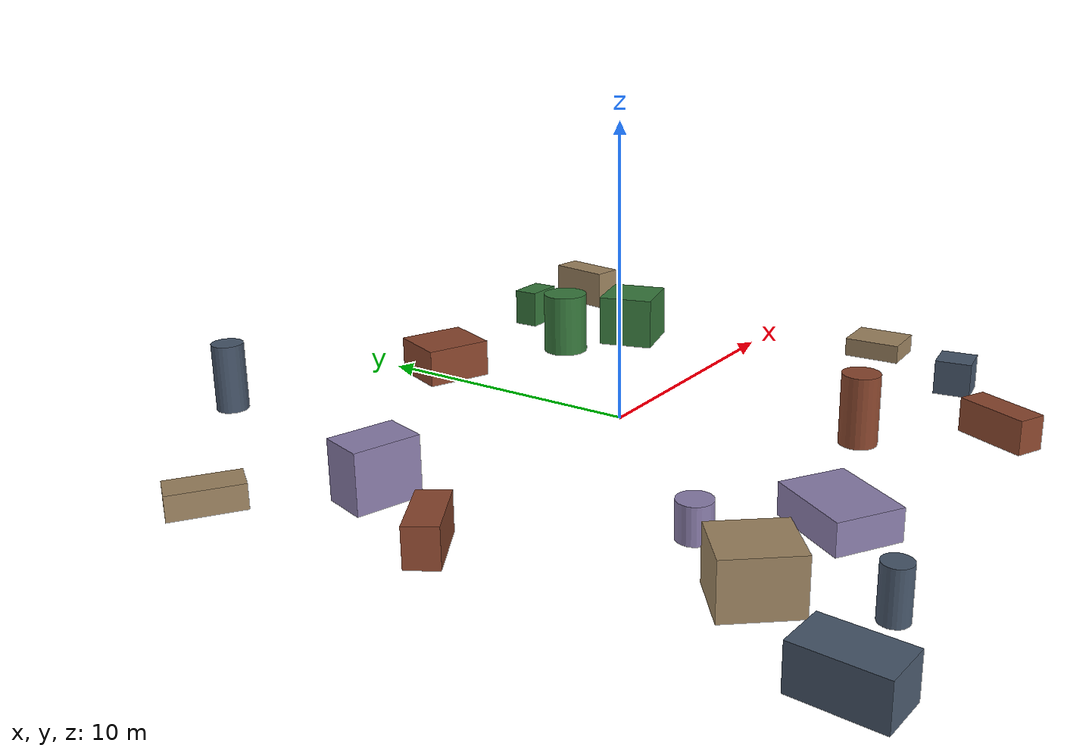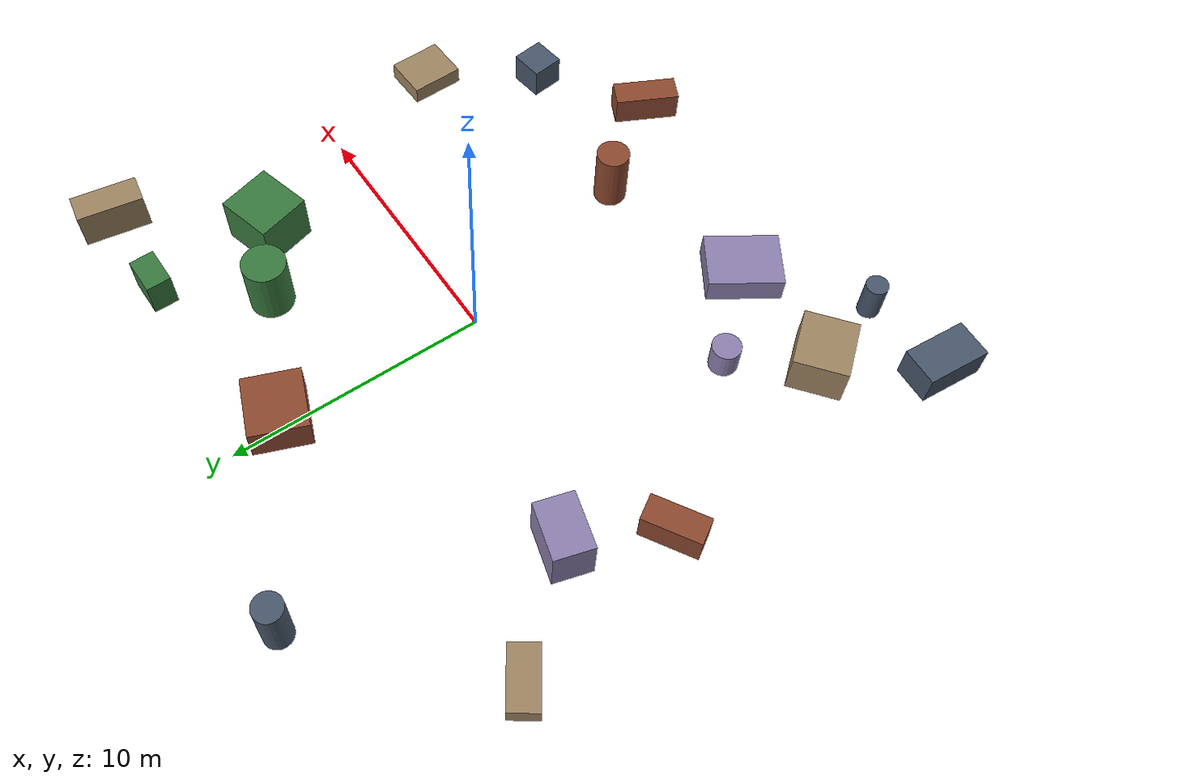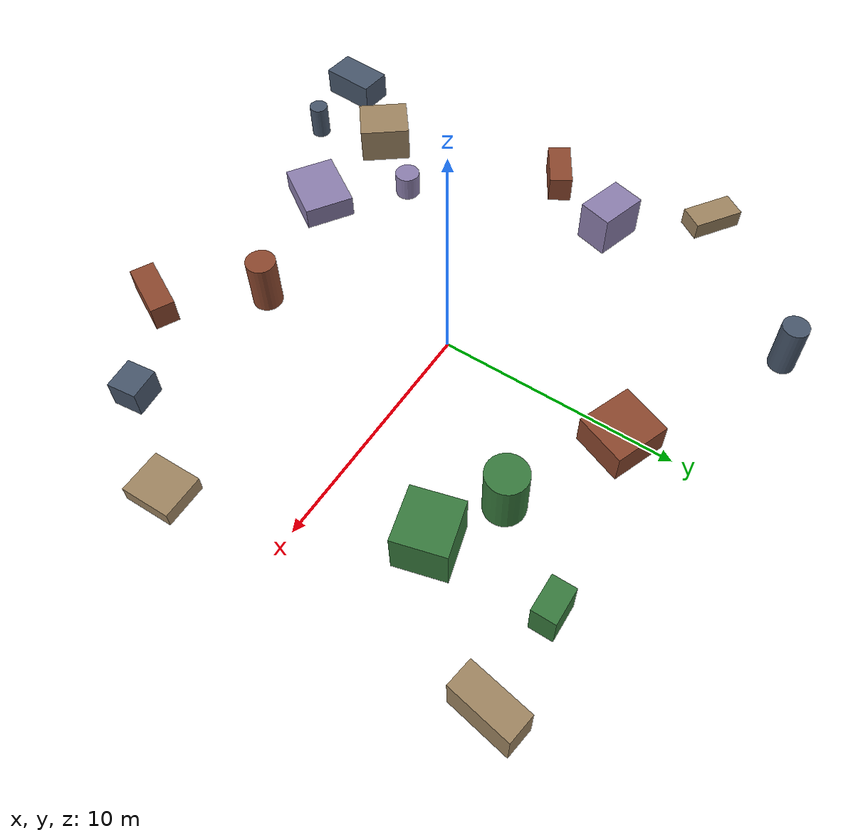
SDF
<sdf version="1.10">
 <world name="robotx_task1_uav_view">
  <gravity>0 0 -9.81</gravity>
  <physics name="physics" type="ode">
   <max_step_size>0.002</max_step_size>
   <real_time_factor>1.0</real_time_factor>
  </physics>
  <scene>
   <ambient>0.18 0.22 0.18 1.0</ambient>
   <background>0.35 0.55 0.40 1.0</background>
   <shadows>true</shadows>
   <grid>false</grid>
  </scene>
  <light name="sun" type="directional">
   <pose>0 0 300 0 0 0</pose>
   <diffuse>0.55 0.75 0.60 1.0</diffuse>
   <specular>0.28 0.45 0.32 1.0</specular>
   <direction>0.20 -0.06 -1.0</direction>
   <attenuation>
    <range>2500</range>
    <constant>0.85</constant>
    <linear>0.001</linear>
    <quadratic>0.00005</quadratic>
   </attenuation>
  </light>
  <plugin filename="gz-sim-physics-system" name="gz::sim::systems::Physics"/>
  <plugin filename="gz-sim-user-commands-system" name="gz::sim::systems::UserCommands"/>
  <plugin filename="gz-sim-scene-broadcaster-system" name="gz::sim::systems::SceneBroadcaster"/>
  <plugin filename="gz-sim-sensors-system" name="gz::sim::systems::Sensors">
   <render_engine>ogre2</render_engine>
  </plugin>
  <model name="scene_clutter_box_000">
   <static>true</static>
   <pose>11.337 -4.840 0.361 0 0 0.033734</pose>
   <link name="link">
    <visual name="v">
     <geometry><box><size>1.748 2.067 0.683</size></box></geometry>
     <material><ambient>0.45 0.38 0.32 1.0</ambient><diffuse>0.62 0.52 0.38 1.0</diffuse></material>
    </visual>
   </link>
  </model>
  <model name="scene_clutter_box_001">
   <static>true</static>
   <pose>-10.920 -12.681 0.659 0 0 -1.645589</pose>
   <link name="link">
    <visual name="v">
     <geometry><box><size>2.475 1.454 1.278</size></box></geometry>
     <material><ambient>0.18 0.22 0.28 1.0</ambient><diffuse>0.28 0.34 0.42 1.0</diffuse></material>
    </visual>
   </link>
  </model>
  <model name="scene_clutter_box_002">
   <static>true</static>
   <pose>4.945 -11.341 0.597 0 0 2.687458</pose>
   <link name="link">
    <visual name="v">
     <geometry><box><size>1.010 2.495 1.153</size></box></geometry>
     <material><ambient>0.35 0.16 0.12 1.0</ambient><diffuse>0.55 0.28 0.18 1.0</diffuse></material>
    </visual>
   </link>
  </model>
  <model name="scene_clutter_box_003">
   <static>true</static>
   <pose>7.663 9.165 0.735 0 0 1.587677</pose>
   <link name="link">
    <visual name="v">
     <geometry><box><size>0.955 1.453 1.430</size></box></geometry>
     <material><ambient>0.12 0.30 0.14 1.0</ambient><diffuse>0.22 0.48 0.24 1.0</diffuse></material>
    </visual>
   </link>
  </model>
  <model name="scene_clutter_box_004">
   <static>true</static>
   <pose>-9.103 2.469 0.975 0 0 -1.842024</pose>
   <link name="link">
    <visual name="v">
     <geometry><box><size>1.494 2.120 1.910</size></box></geometry>
     <material><ambient>0.40 0.35 0.50 1.0</ambient><diffuse>0.55 0.50 0.68 1.0</diffuse></material>
    </visual>
   </link>
  </model>
  <model name="scene_clutter_box_005">
   <static>true</static>
   <pose>11.536 9.122 0.786 0 0 -0.156700</pose>
   <link name="link">
    <visual name="v">
     <geometry><box><size>1.118 2.529 1.531</size></box></geometry>
     <material><ambient>0.45 0.38 0.32 1.0</ambient><diffuse>0.62 0.52 0.38 1.0</diffuse></material>
    </visual>
   </link>
  </model>
  <model name="scene_clutter_cyl_006">
   <static>true</static>
   <pose>-6.496 11.666 1.225 0 0 0.326973</pose>
   <link name="link">
    <visual name="v">
     <geometry><cylinder><radius>0.539</radius><length>2.351</length></cylinder></geometry>
     <material><ambient>0.18 0.22 0.28 1.0</ambient><diffuse>0.28 0.34 0.42 1.0</diffuse></material>
    </visual>
   </link>
  </model>
  <model name="scene_clutter_box_007">
   <static>true</static>
   <pose>-10.710 -0.908 0.636 0 0 2.124759</pose>
   <link name="link">
    <visual name="v">
     <geometry><box><size>1.009 2.202 1.233</size></box></geometry>
     <material><ambient>0.35 0.16 0.12 1.0</ambient><diffuse>0.55 0.28 0.18 1.0</diffuse></material>
    </visual>
   </link>
  </model>
  <model name="scene_clutter_cyl_008">
   <static>true</static>
   <pose>5.022 5.744 1.202 0 0 -0.138627</pose>
   <link name="link">
    <visual name="v">
     <geometry><cylinder><radius>0.830</radius><length>2.303</length></cylinder></geometry>
     <material><ambient>0.12 0.30 0.14 1.0</ambient><diffuse>0.22 0.48 0.24 1.0</diffuse></material>
    </visual>
   </link>
  </model>
  <model name="scene_clutter_cyl_009">
   <static>true</static>
   <pose>-6.406 -6.443 0.626 0 0 2.715813</pose>
   <link name="link">
    <visual name="v">
     <geometry><cylinder><radius>0.544</radius><length>1.152</length></cylinder></geometry>
     <material><ambient>0.40 0.35 0.50 1.0</ambient><diffuse>0.55 0.50 0.68 1.0</diffuse></material>
    </visual>
   </link>
  </model>
  <model name="scene_clutter_box_010">
   <static>true</static>
   <pose>-8.439 -9.195 0.855 0 0 -0.896456</pose>
   <link name="link">
    <visual name="v">
     <geometry><box><size>2.228 1.998 1.670</size></box></geometry>
     <material><ambient>0.45 0.38 0.32 1.0</ambient><diffuse>0.62 0.52 0.38 1.0</diffuse></material>
    </visual>
   </link>
  </model>
  <model name="scene_clutter_box_011">
   <static>true</static>
   <pose>8.775 -8.676 0.629 0 0 1.698813</pose>
   <link name="link">
    <visual name="v">
     <geometry><box><size>1.252 1.291 1.219</size></box></geometry>
     <material><ambient>0.18 0.22 0.28 1.0</ambient><diffuse>0.28 0.34 0.42 1.0</diffuse></material>
    </visual>
   </link>
  </model>
  <model name="scene_clutter_cyl_012">
   <static>true</static>
   <pose>2.181 -7.630 1.229 0 0 -2.374694</pose>
   <link name="link">
    <visual name="v">
     <geometry><cylinder><radius>0.629</radius><length>2.358</length></cylinder></geometry>
     <material><ambient>0.35 0.16 0.12 1.0</ambient><diffuse>0.55 0.28 0.18 1.0</diffuse></material>
    </visual>
   </link>
  </model>
  <model name="scene_clutter_box_013">
   <static>true</static>
   <pose>7.788 4.353 0.983 0 0 -1.296051</pose>
   <link name="link">
    <visual name="v">
     <geometry><box><size>2.103 2.199 1.926</size></box></geometry>
     <material><ambient>0.12 0.30 0.14 1.0</ambient><diffuse>0.22 0.48 0.24 1.0</diffuse></material>
    </visual>
   </link>
  </model>
  <model name="scene_clutter_box_014">
   <static>true</static>
   <pose>-3.708 -9.433 0.522 0 0 1.001590</pose>
   <link name="link">
    <visual name="v">
     <geometry><box><size>2.817 2.168 1.004</size></box></geometry>
     <material><ambient>0.40 0.35 0.50 1.0</ambient><diffuse>0.55 0.50 0.68 1.0</diffuse></material>
    </visual>
   </link>
  </model>
  <model name="scene_clutter_box_015">
   <static>true</static>
   <pose>-12.181 6.066 0.418 0 0 2.541926</pose>
   <link name="link">
    <visual name="v">
     <geometry><box><size>2.238 1.124 0.796</size></box></geometry>
     <material><ambient>0.45 0.38 0.32 1.0</ambient><diffuse>0.62 0.52 0.38 1.0</diffuse></material>
    </visual>
   </link>
  </model>
  <model name="scene_clutter_cyl_016">
   <static>true</static>
   <pose>-7.537 -12.391 0.825 0 0 2.875380</pose>
   <link name="link">
    <visual name="v">
     <geometry><cylinder><radius>0.420</radius><length>1.549</length></cylinder></geometry>
     <material><ambient>0.18 0.22 0.28 1.0</ambient><diffuse>0.28 0.34 0.42 1.0</diffuse></material>
    </visual>
   </link>
  </model>
  <model name="scene_clutter_box_017">
   <static>true</static>
   <pose>0.365 7.961 0.676 0 0 2.775436</pose>
   <link name="link">
    <visual name="v">
     <geometry><box><size>2.343 2.177 1.311</size></box></geometry>
     <material><ambient>0.35 0.16 0.12 1.0</ambient><diffuse>0.55 0.28 0.18 1.0</diffuse></material>
    </visual>
   </link>
  </model>
  <model name="uav_dataset_camera">
   <static>false</static>
   <pose>0 0 26 0 0 0</pose>
   <plugin filename="librobotx_overhead_motion_plugin.dylib" name="robotx::OverheadMotionPlugin">
    <radius_x_m>8.23450</radius_x_m>
    <radius_y_m>7.94816</radius_y_m>
    <angular_speed_rad_s>0.042972</angular_speed_rad_s>
    <phase_rad>0.546443</phase_rad>
    <z_wobble_m>0.09587</z_wobble_m>
    <z_wobble_hz>0.03044</z_wobble_hz>
    <z_wobble_phase_rad>5.394144</z_wobble_phase_rad>
   </plugin>
   <link name="camera_link">
    <gravity>false</gravity>
    <sensor name="top_down_rgb" type="camera">
     <always_on>true</always_on>
     <update_rate>20</update_rate>
     <pose>0 0 0 0 1.57079632679 0</pose>
     <camera>
      <horizontal_fov>1.05</horizontal_fov>
      <image><width>1920</width><height>1080</height><format>R8G8B8</format></image>
      <clip><near>0.2</near><far>600</far></clip>
     </camera>
     <topic>/robotx/uav/camera/image_raw</topic>
     <visualize>true</visualize>
    </sensor>
   </link>
  </model>
 </world>
</sdf>
